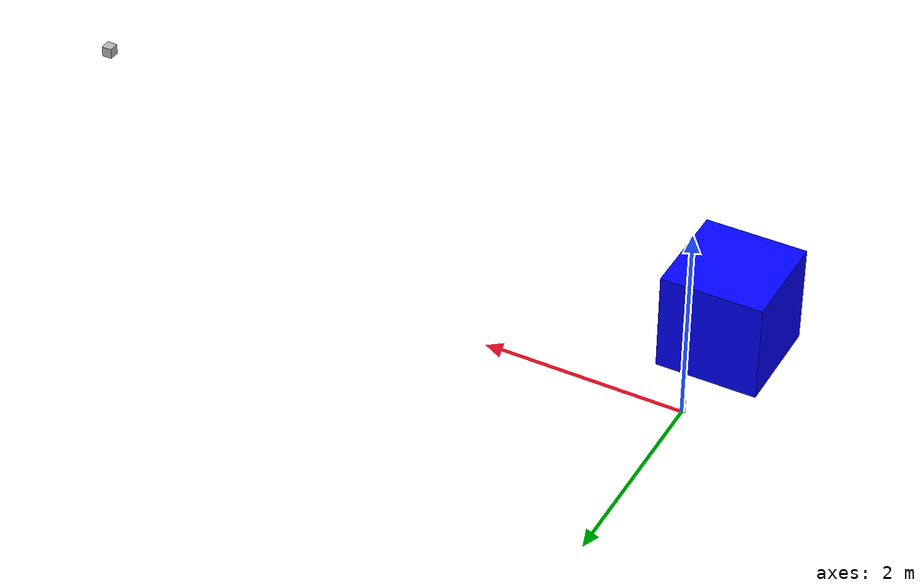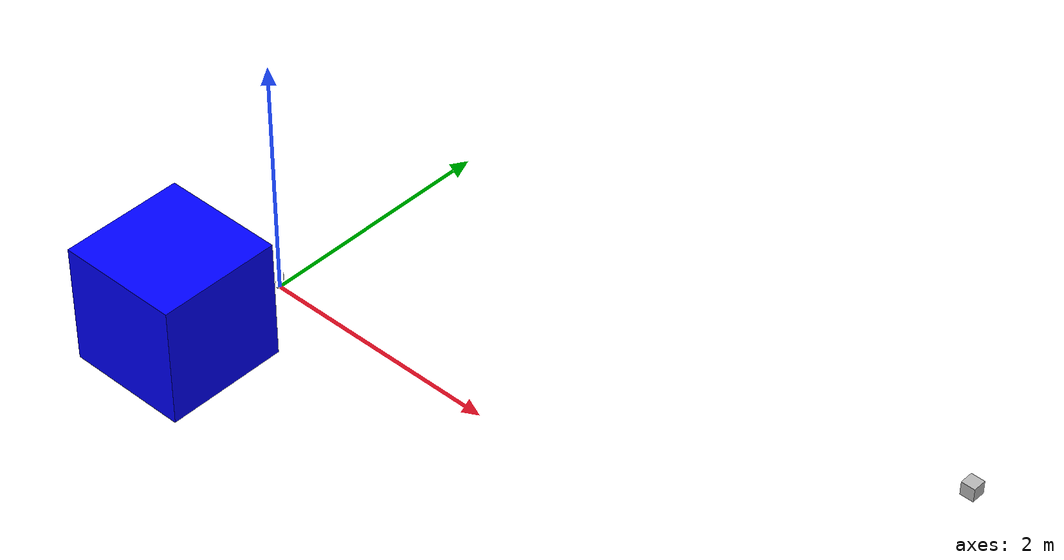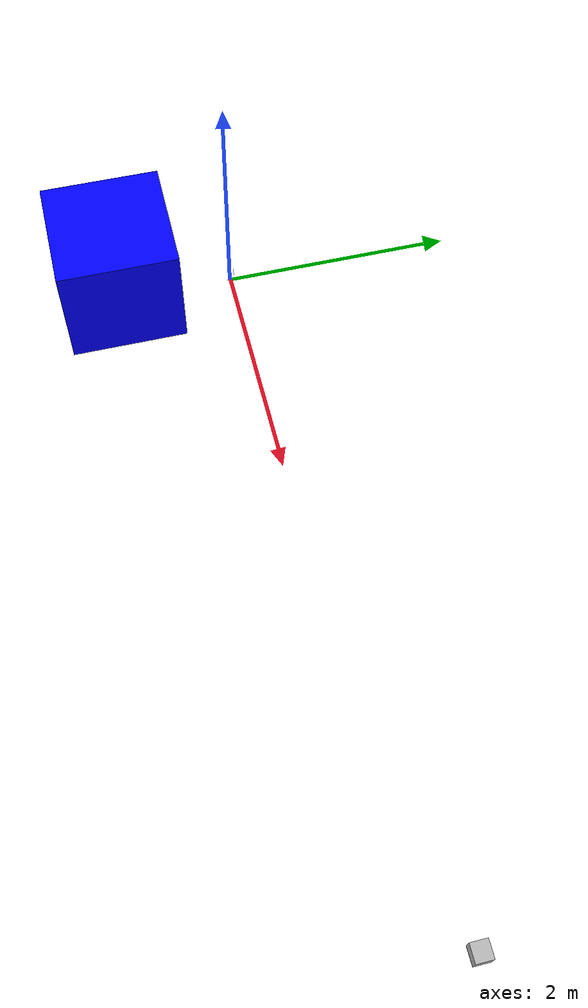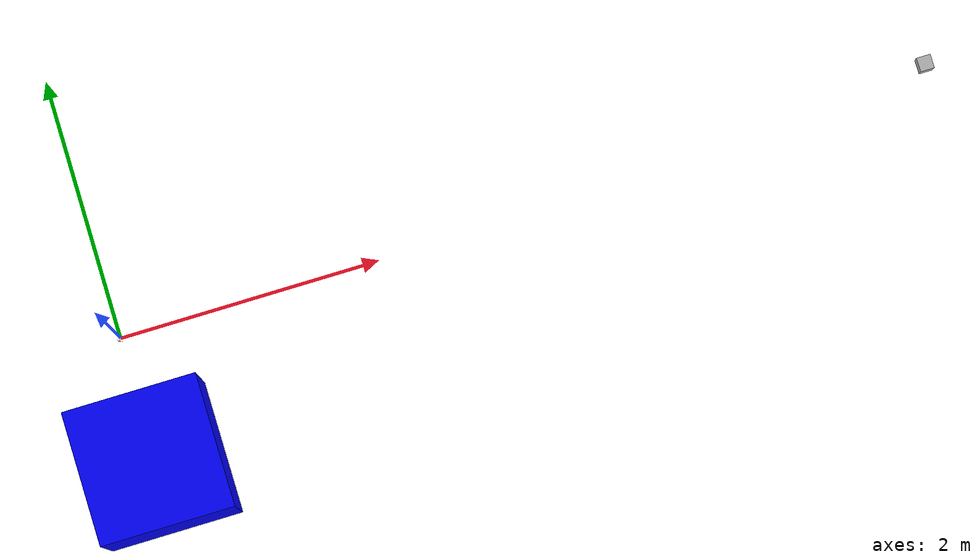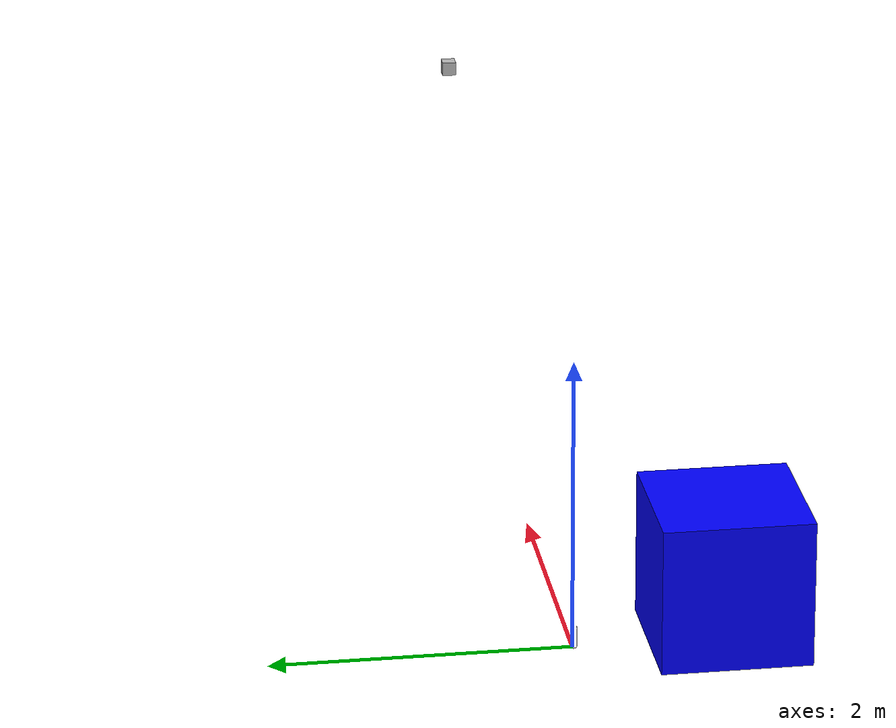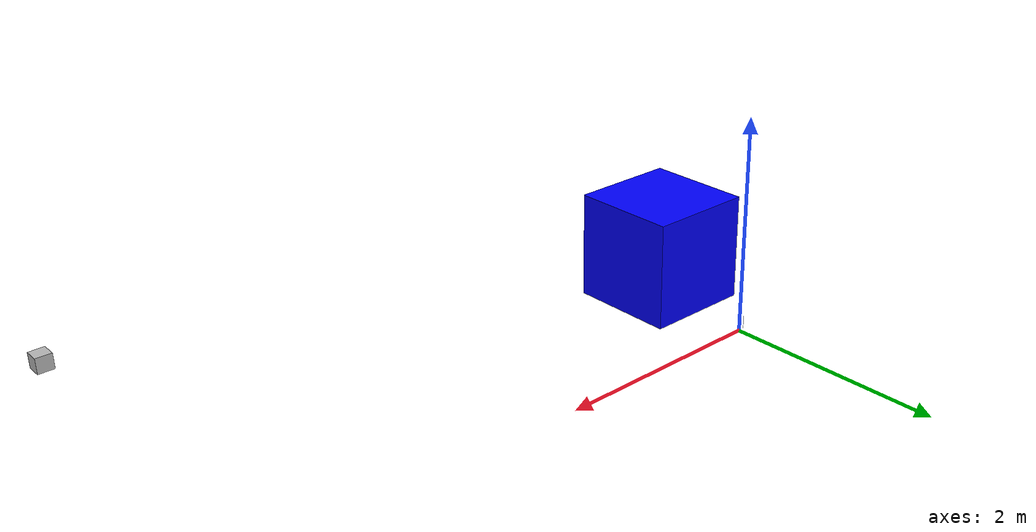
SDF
<?xml version="1.0"?>
<sdf version='1.9'>
  <world name='new_world'>
    <scene>
      <!-- For turquoise ambient to match particle effect -->
      <ambient>0.0 1.0 1.0</ambient>
      <background>0.0 0.7 0.8</background>
    </scene>
    <gravity>0 0 -9.8</gravity>
    <magnetic_field>5.5645e-6 22.8758e-6 -42.3884e-6</magnetic_field>
    <atmosphere type='adiabatic' />
    <physics name="lms" type='ignored'>
      <max_step_size>0.001</max_step_size>
      <real_time_factor>1.0</real_time_factor>
      <real_time_update_rate>1000</real_time_update_rate>
    </physics>
    <plugin
      filename="libignition-gazebo-physics-system"
      name="ignition::gazebo::systems::Physics">
    </plugin>
    <plugin
      filename="libignition-gazebo-user-commands-system"
      name="ignition::gazebo::systems::UserCommands">
    </plugin>
    <plugin
      filename="libignition-gazebo-scene-broadcaster-system.so"
      name="ignition::gazebo::systems::SceneBroadcaster">
    </plugin>

    <plugin
    filename="ignition-gazebo-contact-system"
    name="ignition::gazebo::systems::Contact">
  </plugin>

      <plugin
      filename="ignition-gazebo-particle-emitter2-system"
      name="ignition::gazebo::systems::ParticleEmitter2">
    </plugin>

  <plugin
    filename="ignition-gazebo-buoyancy-system"
    name="ignition::gazebo::systems::Buoyancy">
    <uniform_fluid_density>1000</uniform_fluid_density>
  </plugin>

    <gui fullscreen="0">
      <!-- 3D scene -->
      <plugin filename="GzScene3D" name="3D View">
        <ignition-gui>
          <title>3D View</title>
          <property type="bool" key="showTitleBar">false</property>
          <property type="string" key="state">docked</property>
        </ignition-gui>

        <engine>ogre2</engine>
        <scene>scene</scene>
        <ambient_light>1.0 1.0 1.0</ambient_light>
        <background_color>0.8 0.8 0.8</background_color>
        <camera_pose>-6 0 6 0 0.5 0</camera_pose>
      </plugin>
      <!-- Plugins that add functionality to the scene -->
      <plugin filename="EntityContextMenuPlugin" name="Entity context menu">
        <gz-gui>
          <property key="state" type="string">floating</property>
          <property key="width" type="double">5</property>
          <property key="height" type="double">5</property>
          <property key="showTitleBar" type="bool">false</property>
        </gz-gui>
      </plugin>
      <plugin filename="GzSceneManager" name="Scene Manager">
        <gz-gui>
          <property key="resizable" type="bool">false</property>
          <property key="width" type="double">5</property>
          <property key="height" type="double">5</property>
          <property key="state" type="string">floating</property>
          <property key="showTitleBar" type="bool">false</property>
        </gz-gui>
      </plugin>
      <plugin filename="InteractiveViewControl" name="Interactive view control">
        <gz-gui>
          <property key="resizable" type="bool">false</property>
          <property key="width" type="double">5</property>
          <property key="height" type="double">5</property>
          <property key="state" type="string">floating</property>
          <property key="showTitleBar" type="bool">false</property>
        </gz-gui>
      </plugin>
      <plugin filename="CameraTracking" name="Camera Tracking">
        <gz-gui>
          <property key="resizable" type="bool">false</property>
          <property key="width" type="double">5</property>
          <property key="height" type="double">5</property>
          <property key="state" type="string">floating</property>
          <property key="showTitleBar" type="bool">false</property>
        </gz-gui>
      </plugin>
      <!-- World control -->
      <plugin filename="WorldControl" name="World control">
        <ignition-gui>
          <title>World control</title>
          <property type="bool" key="showTitleBar">false</property>
          <property type="bool" key="resizable">false</property>
          <property type="double" key="height">72</property>
          <property type="double" key="width">121</property>
          <property type="double" key="z">1</property>

          <property type="string" key="state">floating</property>
          <anchors target="3D View">
            <line own="left" target="left" />
            <line own="bottom" target="bottom" />
          </anchors>
        </ignition-gui>

        <play_pause>true</play_pause>
        <step>true</step>
        <start_paused>true</start_paused>
        <service>/world/world_demo/control</service>
        <stats_topic>/world/world_demo/stats</stats_topic>
      </plugin>

      <!-- World statistics -->
      <plugin filename="WorldStats" name="World stats">
        <ignition-gui>
          <title>World stats</title>
          <property type="bool" key="showTitleBar">false</property>
          <property type="bool" key="resizable">false</property>
          <property type="double" key="height">110</property>
          <property type="double" key="width">290</property>
          <property type="double" key="z">1</property>

          <property type="string" key="state">floating</property>
          <anchors target="3D View">
            <line own="right" target="right" />
            <line own="bottom" target="bottom" />
          </anchors>
        </ignition-gui>

        <sim_time>true</sim_time>
        <real_time>true</real_time>
        <real_time_factor>true</real_time_factor>
        <iterations>true</iterations>
        <topic>/world/world_demo/stats</topic>
        <!-- Inspector -->
        <plugin filename="ComponentInspector" name="Component inspector">
          <gz-gui>
            <property type="string" key="state">docked_collapsed</property>
          </gz-gui>
        </plugin>
      </plugin>
      <!-- Entity tree -->
      <plugin filename="EntityTree" name="Entity tree">
</plugin>

      <!-- Image Display Plugins for visualization -->
      <plugin filename="ImageDisplay" name="Image Display">
        <gz-gui>
        </gz-gui>
        <topic>semantic/colored_map</topic>
      </plugin>
      <plugin filename="ImageDisplay" name="Image Display">
        <gz-gui>
        </gz-gui>
        <topic>panoptic/colored_map</topic>
      </plugin>
      <plugin filename="ImageDisplay" name="Image Display">
        <gz-gui>
        </gz-gui>
        <topic>semantic/labels_map</topic>
      </plugin>

    </gui>

    <include>
      <uri>
        https://fuel.ignitionrobotics.org/1.0/OpenRobotics/models/Coke
      </uri>
    </include>
    <!-- Instance / Panoptic Segmentation Camera Sensor -->
    <model name="_instance_camera_sensor">
      <pose>6 0 2.0 0 0.0 3.14</pose>
      <link name="link">
        <pose>0 0 0 0 0 0</pose>
        <inertial>
          <mass>0.5</mass>
          <inertia>
            <ixx>0.000166667</ixx>
            <iyy>0.000166667</iyy>
            <izz>0.000166667</izz>
          </inertia>
        </inertial>
        <collision name="collision">
          <geometry>
            <box>
              <size>0.1 0.1 0.1</size>
            </box>
          </geometry>
        </collision>
        <visual name="visual">
          <geometry>
            <box>
              <size>0.1 0.1 0.1</size>
            </box>
          </geometry>
        </visual>

        <sensor name="instance_segmentation_camera" type="segmentation">
          <topic>panoptic</topic>
          <camera>
            <segmentation_type>instance</segmentation_type>
            <horizontal_fov>1.57</horizontal_fov>
            <image>
              <width>800</width>
              <height>600</height>
            </image>
            <clip>
              <near>0.1</near>
              <far>100</far>
            </clip>
            <!-- uncomment these lines to save segmentation data -->

            <save enabled="true">
              <path>segmentation_data/instance_camera</path>
            </save>

          </camera>
          <always_on>1</always_on>
          <update_rate>30</update_rate>
          <visualize>true</visualize>
        </sensor>
      </link>
    </model>
    <!-- Semantic Segmentation Camera Sensor -->
    <model name="_semantic_camera_sensor">
      <pose>6 0 2.0 0 0.0 3.14</pose>
      <link name="link">
        <pose>0 0 0 0 0 0</pose>
        <inertial>
          <mass>0.5</mass>
          <inertia>
            <ixx>0.000166667</ixx>
            <iyy>0.000166667</iyy>
            <izz>0.000166667</izz>
          </inertia>
        </inertial>
        <collision name="collision">
          <geometry>
            <box>
              <size>0.1 0.1 0.1</size>
            </box>
          </geometry>
        </collision>
        <visual name="visual">
          <geometry>
            <box>
              <size>0.1 0.1 0.1</size>
            </box>
          </geometry>
        </visual>
        <sensor name="semantic_segmentation_camera" type="segmentation">
          <topic>semantic</topic>
          <camera>
            <segmentation_type>semantic</segmentation_type>
            <horizontal_fov>1.57</horizontal_fov>
            <image>
              <width>800</width>
              <height>600</height>
            </image>
            <clip>
              <near>0.1</near>
              <far>100</far>
            </clip>
            <!-- uncomment these lines to save segmentation data -->

            <save enabled="true">
              <path>segmentation_data/semantic_camera</path>
            </save>

          </camera>
          <always_on>1</always_on>
          <update_rate>30</update_rate>
          <visualize>true</visualize>
        </sensor>
      </link>
    </model>
    <model name="box">
      <pose>0 -1 0.5 0 0 0</pose>
      <link name="box_link">
        <inertial>
          <inertia>
            <ixx>1</ixx>
            <ixy>0</ixy>
            <ixz>0</ixz>
            <iyy>1</iyy>
            <iyz>0</iyz>
            <izz>1</izz>
          </inertia>
          <mass>1.0</mass>
        </inertial>
        <collision name="box_collision">
          <geometry>
            <box>
              <size>1 1 1</size>
            </box>
          </geometry>
        </collision>
        <visual name="box_visual">
          <geometry>
            <box>
              <size>1 1 1</size>
            </box>
          </geometry>
          <material>
            <ambient>0 0 0.5 1</ambient>
            <diffuse>0 0 1 1</diffuse>
            <specular>0 0 0.3 1</specular>
          </material>
          <plugin filename="ignition-gazebo-label-system" name="ignition::gazebo::systems::Label">
            <label>10</label>
          </plugin>
        </visual>
      </link>
    </model>

    <model name="sphere">
      <static>true</static>
      <pose>-1 -2 0.5 0 0 0</pose>
      <link name="sphere_link">
      ...
      </link>
      <plugin filename="ignition-gazebo-label-system" name="ignition::gazebo::systems::Label">
        <label>20</label>
      </plugin>
      <!-- add Hydrodynamics to object -->
      <plugin
        filename="ignition-gazebo-hydrodynamics-system"
        name="ignition::gazebo::systems::Hydrodynamics">
        <link_name>base_link</link_name>
        <xDotU>-4.876161</xDotU>
        <yDotV>-126.324739</yDotV>
        <zDotW>-126.324739</zDotW>
        <kDotP>0</kDotP>
        <mDotQ>-33.46</mDotQ>
        <nDotR>-33.46</nDotR>
        <xUU>-6.2282</xUU>
        <xU>0</xU>
        <yVV>-601.27</yVV>
        <yV>0</yV>
        <zWW>-601.27</zWW>
        <zW>0</zW>
        <kPP>-0.1916</kPP>
        <kP>0</kP>
        <mQQ>-632.698957</mQQ>
        <mQ>0</mQ>
        <nRR>-632.698957</nRR>
        <nR>0</nR>
      </plugin>

    </model>

  </world>
</sdf>

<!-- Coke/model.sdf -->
<sdf version="1.6">
  <model name='Coke'>
    <static>true</static>
    <link name="body">
      <pose>0 0 0 0 0 0</pose>

        <visual name="visual">
          <geometry>
            <mesh><uri>model://Coke/meshes/coke.obj</uri></mesh>
          </geometry>
        </visual>

        <collision name="collision">
          <geometry>
            <mesh><uri>model://Coke/meshes/coke.obj</uri></mesh>
          </geometry>
        </collision>

        <!-- TODO: Replace with accurate values of mass and inertia -->
        <inertial>
          <mass>1.0</mass>
          <inertia>
            <ixx>0.003366666666666667</ixx>
            <iyy>0.0008666666666666667</iyy>
            <izz>0.0041666666666666675</izz>
          </inertia>
        </inertial>

    </link>

  </model>
</sdf>
